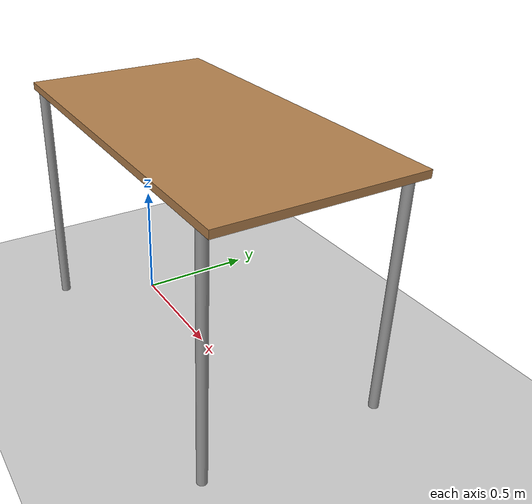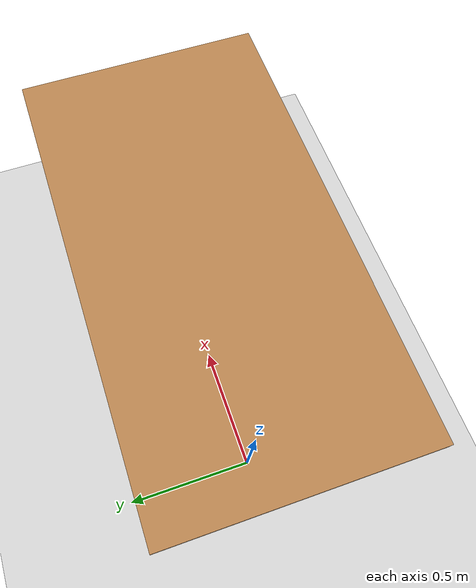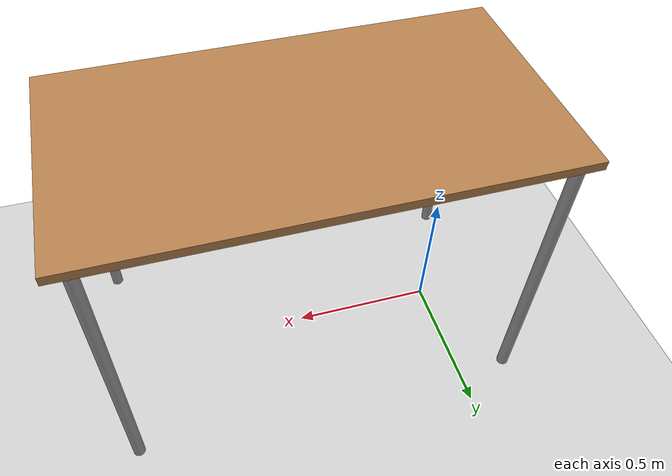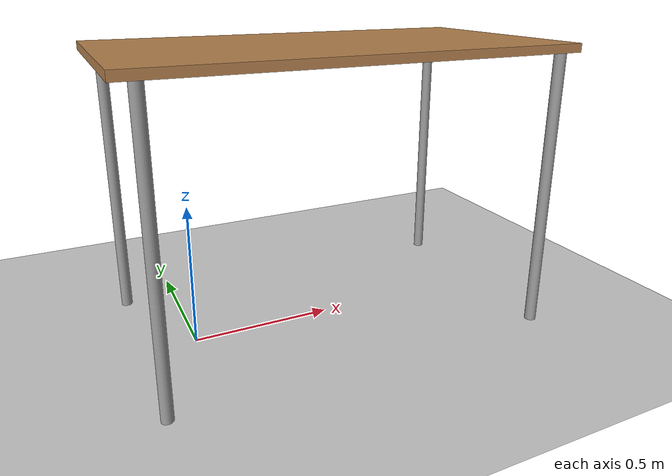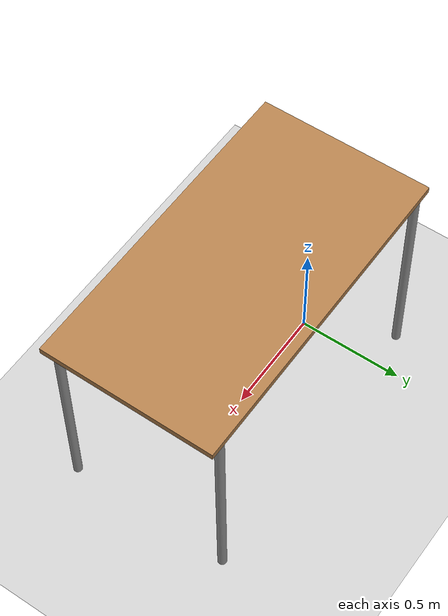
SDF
<?xml version="1.0" ?>
<sdf version="1.6">
  <world name="default">

    <light type="directional" name="light">
      <light_on>true</light_on>
      <pose>0 0 2 0 0 0</pose>
      <diffuse>0.5 0.5 0.5 1</diffuse>
      <specular>.1 .1 .1 1</specular>
      <cast_shadows>false</cast_shadows>
    </light>

    <include>
      <uri>model://ground_plane</uri>
    </include>

    <include>
      <uri>model://sun</uri>
    </include>

    <include>
      <uri>model://big_table</uri>
      <name>table</name>
      <pose>0.5 0 0 0 0 0</pose>
    </include>

    <physics type="ode">
      <real_time_update_rate>1000.0</real_time_update_rate>
    </physics>

    <gravity>
      0.0 0.0 -9.81
    </gravity>

    <gui fullscreen='0'>
    </gui>

  </world>
</sdf>

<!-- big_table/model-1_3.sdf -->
<sdf version="1.3">
  <model name="big_table">
    <static>true</static>
    <link name="link">
      <collision name="surface">
        <pose>0 0 1.0 0 0 0</pose>
        <geometry>
          <box>
            <size>1.5 0.8 0.03</size>
          </box>
        </geometry>
        <surface>
          <friction>
            <ode>
              <mu>0.6</mu>
              <mu2>0.6</mu2>
            </ode>
          </friction>
        </surface>
      </collision>
      <visual name="visual1">
        <pose>0 0 1.0 0 0 0</pose>
        <geometry>
          <box>
            <size>1.5 0.8 0.03</size>
          </box>
        </geometry>
        <material>
          <script>
            <uri>file://media/materials/scripts/gazebo.material</uri>
            <name>Gazebo/Wood</name>
          </script>
        </material>
      </visual>
      <collision name="front_left_leg">
        <pose>0.68 0.38 0.5 0 0 0</pose>
        <geometry>
          <cylinder>
            <radius>0.02</radius>
            <length>1.0</length>
          </cylinder>
        </geometry>
      </collision>
      <visual name="front_left_leg">
        <pose>0.68 0.38 0.5 0 0 0</pose>
        <geometry>
          <cylinder>
            <radius>0.02</radius>
            <length>1.0</length>
          </cylinder>
        </geometry>
        <material>
          <script>
            <uri>file://media/materials/scripts/gazebo.material</uri>
            <name>Gazebo/Grey</name>
          </script>
        </material>
      </visual>
      <collision name="front_right_leg">
        <pose>0.68 -0.38 0.5 0 0 0</pose>
        <geometry>
          <cylinder>
            <radius>0.02</radius>
            <length>1.0</length>
          </cylinder>
        </geometry>
      </collision>
      <visual name="front_right_leg">
        <pose>0.68 -0.38 0.5 0 0 0</pose>
        <geometry>
          <cylinder>
            <radius>0.02</radius>
            <length>1.0</length>
          </cylinder>
        </geometry>
        <material>
          <script>
            <uri>file://media/materials/scripts/gazebo.material</uri>
            <name>Gazebo/Grey</name>
          </script>
        </material>
      </visual>
      <collision name="back_right_leg">
        <pose>-0.68 -0.38 0.5 0 0 0</pose>
        <geometry>
          <cylinder>
            <radius>0.02</radius>
            <length>1.0</length>
          </cylinder>
        </geometry>
      </collision>
      <visual name="back_right_leg">
        <pose>-0.68 -0.38 0.5 0 0 0</pose>
        <geometry>
          <cylinder>
            <radius>0.02</radius>
            <length>1.0</length>
          </cylinder>
        </geometry>
        <material>
          <script>
            <uri>file://media/materials/scripts/gazebo.material</uri>
            <name>Gazebo/Grey</name>
          </script>
        </material>
      </visual>
      <collision name="back_left_leg">
        <pose>-0.68 0.38 0.5 0 0 0</pose>
        <geometry>
          <cylinder>
            <radius>0.02</radius>
            <length>1.0</length>
          </cylinder>
        </geometry>
      </collision>
      <visual name="back_left_leg">
        <pose>-0.68 0.38 0.5 0 0 0</pose>
        <geometry>
          <cylinder>
            <radius>0.02</radius>
            <length>1.0</length>
          </cylinder>
        </geometry>
        <material>
          <script>
            <uri>file://media/materials/scripts/gazebo.material</uri>
            <name>Gazebo/Grey</name>
          </script>
        </material>
      </visual>
    </link>
  </model>
</sdf>
